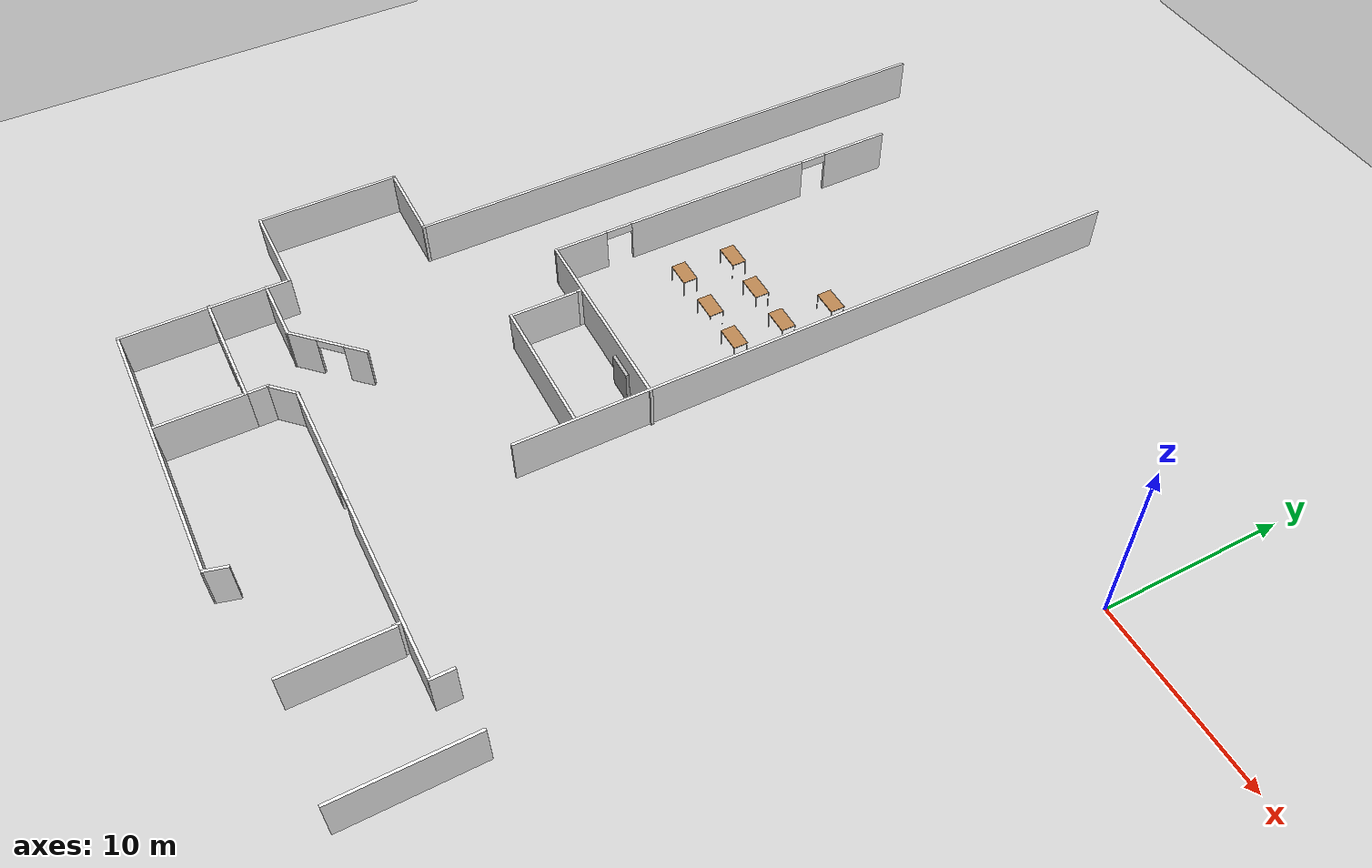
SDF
<sdf version="1.6">
 <world name="default">
  <model name="ground_plane">
   <static>1</static>
   <link name="link">
    <collision name="collision">
     <geometry><plane><normal>0 0 1</normal><size>100 100</size></plane></geometry>
     <surface><friction><ode><mu>100</mu><mu2>50</mu2></ode></friction></surface>
    </collision>
    <visual name="visual">
     <cast_shadows>0</cast_shadows>
     <geometry><plane><normal>0 0 1</normal><size>100 100</size></plane></geometry>
     <material>
      <script>
       <uri>model://office_env/materials/scripts</uri>
       <uri>model://office_env/materials/textures</uri>
       <name>wall</name>
      </script>
     </material>
    </visual>
   </link>
  </model>
  <model name="aule_N">
   <pose>0.1887 -1.4289 0 0 -0 0</pose>
   <link name="Door_6">
    <collision name="Door_6_Collision">
     <geometry><box><size>1.5 0.17 2</size></box></geometry>
     <pose>0 0 1 0 -0 0</pose>
    </collision>
    <visual name="Door_6_Visual">
     <pose>0 0 1 0 -0 0</pose>
     <geometry><box><size>1.5 0.17 2</size></box></geometry>
     <material>
      <script>
       <uri>model://office_env/materials/scripts</uri>
       <uri>model://office_env/materials/textures</uri>
       <name>wall</name>
      </script>
     </material>
    </visual>
    <pose>-21.8785 -12.0586 0 0 -0 0</pose>
   </link>
   <link name="Wall_15">
    <collision name="Wall_15_Collision">
     <geometry><box><size>30.75 0.15 2.5</size></box></geometry>
     <pose>0 0 1.25 0 -0 0</pose>
    </collision>
    <visual name="Wall_15_Visual">
     <pose>0 0 1.25 0 -0 0</pose>
     <geometry><box><size>30.75 0.15 2.5</size></box></geometry>
     <material>
      <script>
       <uri>model://office_env/materials/scripts</uri>
       <uri>model://office_env/materials/textures</uri>
       <name>wall</name>
      </script>
      <ambient>1 1 1 1</ambient>
     </material>
    </visual>
    <pose>-35.3644 -1.91704 0 0 0 -1.5708</pose>
   </link>
   <link name="Wall_16">
    <collision name="Wall_16_Collision">
     <geometry><box><size>4.75 0.15 2.5</size></box></geometry>
     <pose>0 0 1.25 0 -0 0</pose>
    </collision>
    <visual name="Wall_16_Visual">
     <pose>0 0 1.25 0 -0 0</pose>
     <geometry><box><size>4.75 0.15 2.5</size></box></geometry>
     <material>
      <script>
       <uri>model://office_env/materials/scripts</uri>
       <uri>model://office_env/materials/textures</uri>
       <name>wall</name>
      </script>
      <ambient>1 1 1 1</ambient>
     </material>
    </visual>
    <pose>-37.6644 -17.217 0 0 -0 3.14159</pose>
   </link>
   <link name="Wall_17">
    <collision name="Wall_17_Collision">
     <geometry><box><size>7.75 0.15 2.5</size></box></geometry>
     <pose>0 0 1.25 0 -0 0</pose>
    </collision>
    <visual name="Wall_17_Visual">
     <pose>0 0 1.25 0 -0 0</pose>
     <geometry><box><size>7.75 0.15 2.5</size></box></geometry>
     <material>
      <script>
       <uri>model://office_env/materials/scripts</uri>
       <uri>model://office_env/materials/textures</uri>
       <name>wall</name>
      </script>
      <ambient>1 1 1 1</ambient>
     </material>
    </visual>
    <pose>-39.9644 -21.017 0 0 0 -1.5708</pose>
   </link>
   <link name="Wall_18">
    <collision name="Wall_18_Collision">
     <geometry><box><size>5.25 0.15 2.5</size></box></geometry>
     <pose>0 0 1.25 0 -0 0</pose>
    </collision>
    <visual name="Wall_18_Visual">
     <pose>0 0 1.25 0 -0 0</pose>
     <geometry><box><size>5.25 0.15 2.5</size></box></geometry>
     <material>
      <script>
       <uri>model://office_env/materials/scripts</uri>
       <uri>model://office_env/materials/textures</uri>
       <name>wall</name>
      </script>
      <ambient>1 1 1 1</ambient>
     </material>
    </visual>
    <pose>-37.4144 -24.817 0 0 -0 0</pose>
   </link>
   <link name="Wall_188">
    <collision name="Wall_188_Collision">
     <geometry><box><size>3.75 0.15 2.5</size></box></geometry>
     <pose>0 0 1.25 0 -0 0</pose>
    </collision>
    <visual name="Wall_188_Visual">
     <pose>0 0 1.25 0 -0 0</pose>
     <geometry><box><size>3.75 0.15 2.5</size></box></geometry>
     <material>
      <script>
       <uri>model://office_env/materials/scripts</uri>
       <uri>model://office_env/materials/textures</uri>
       <name>wall</name>
      </script>
      <ambient>1 1 1 1</ambient>
     </material>
    </visual>
    <pose>-33.1153 -26.0311 0 0 -0 0</pose>
   </link>
   <link name="Wall_189">
    <pose>-29.7774 -24.4931 0 0 -0 0.785398</pose>
    <visual name="Wall_189_Visual_0">
     <pose>-1.39685 0 1.25 0 -0 0</pose>
     <geometry><box><size>1.7063 0.15 2.5</size></box></geometry>
     <material>
      <script>
       <uri>model://office_env/materials/scripts</uri>
       <uri>model://office_env/materials/textures</uri>
       <name>wall</name>
      </script>
      <ambient>1 1 1 1</ambient>
     </material>
    </visual>
    <collision name="Wall_189_Collision_0">
     <geometry><box><size>1.7063 0.15 2.5</size></box></geometry>
     <pose>-1.39685 0 1.25 0 -0 0</pose>
    </collision>
    <visual name="Wall_189_Visual_1">
     <pose>1.60315 0 1.25 0 -0 0</pose>
     <geometry><box><size>1.2937 0.15 2.5</size></box></geometry>
     <material>
      <script>
       <uri>model://office_env/materials/scripts</uri>
       <uri>model://office_env/materials/textures</uri>
       <name>wall</name>
      </script>
      <ambient>1 1 1 1</ambient>
     </material>
    </visual>
    <collision name="Wall_189_Collision_1">
     <geometry><box><size>1.2937 0.15 2.5</size></box></geometry>
     <pose>1.60315 0 1.25 0 -0 0</pose>
    </collision>
    <visual name="Wall_189_Visual_2">
     <pose>0.2063 0 2.25 0 -0 0</pose>
     <geometry><box><size>1.5 0.15 0.5</size></box></geometry>
     <material>
      <script>
       <uri>model://office_env/materials/scripts</uri>
       <uri>model://office_env/materials/textures</uri>
       <name>wall</name>
      </script>
      <ambient>1 1 1 1</ambient>
     </material>
    </visual>
    <collision name="Wall_189_Collision_2">
     <geometry><box><size>1.5 0.15 0.5</size></box></geometry>
     <pose>0.2063 0 2.25 0 -0 0</pose>
    </collision>
   </link>
   <link name="Wall_19">
    <collision name="Wall_19_Collision">
     <geometry><box><size>9 0.15 2.5</size></box></geometry>
     <pose>0 0 1.25 0 -0 0</pose>
    </collision>
    <visual name="Wall_19_Visual">
     <pose>0 0 1.25 0 -0 0</pose>
     <geometry><box><size>9 0.15 2.5</size></box></geometry>
     <material>
      <script>
       <uri>model://office_env/materials/scripts</uri>
       <uri>model://office_env/materials/textures</uri>
       <name>wall</name>
      </script>
      <ambient>1 1 1 1</ambient>
     </material>
    </visual>
    <pose>-34.8644 -29.242 0 0 0 -1.5708</pose>
   </link>
   <link name="Wall_196">
    <pose>-31.6406 -29.0476 0 0 -0 0</pose>
    <visual name="Wall_196_Visual_0">
     <pose>-1.53431 0 1.25 0 -0 0</pose>
     <geometry><box><size>3.68138 0.15 2.5</size></box></geometry>
     <material>
      <script>
       <uri>model://office_env/materials/scripts</uri>
       <uri>model://office_env/materials/textures</uri>
       <name>wall</name>
      </script>
      <ambient>1 1 1 1</ambient>
     </material>
    </visual>
    <collision name="Wall_196_Collision_0">
     <geometry><box><size>3.68138 0.15 2.5</size></box></geometry>
     <pose>-1.53431 0 1.25 0 -0 0</pose>
    </collision>
    <visual name="Wall_196_Visual_1">
     <pose>2.59069 0 1.25 0 -0 0</pose>
     <geometry><box><size>1.56862 0.15 2.5</size></box></geometry>
     <material>
      <script>
       <uri>model://office_env/materials/scripts</uri>
       <uri>model://office_env/materials/textures</uri>
       <name>wall</name>
      </script>
      <ambient>1 1 1 1</ambient>
     </material>
    </visual>
    <collision name="Wall_196_Collision_1">
     <geometry><box><size>1.56862 0.15 2.5</size></box></geometry>
     <pose>2.59069 0 1.25 0 -0 0</pose>
    </collision>
    <visual name="Wall_196_Visual_2">
     <pose>1.05638 0 2.25 0 -0 0</pose>
     <geometry><box><size>1.5 0.15 0.5</size></box></geometry>
     <material>
      <script>
       <uri>model://office_env/materials/scripts</uri>
       <uri>model://office_env/materials/textures</uri>
       <name>wall</name>
      </script>
      <ambient>1 1 1 1</ambient>
     </material>
    </visual>
    <collision name="Wall_196_Collision_2">
     <geometry><box><size>1.5 0.15 0.5</size></box></geometry>
     <pose>1.05638 0 2.25 0 -0 0</pose>
    </collision>
   </link>
   <link name="Wall_197">
    <collision name="Wall_197_Collision">
     <geometry><box><size>1.25 0.15 2.5</size></box></geometry>
     <pose>0 0 1.25 0 -0 0</pose>
    </collision>
    <visual name="Wall_197_Visual">
     <pose>0 0 1.25 0 -0 0</pose>
     <geometry><box><size>1.25 0.15 2.5</size></box></geometry>
     <material>
      <script>
       <uri>model://office_env/materials/scripts</uri>
       <uri>model://office_env/materials/textures</uri>
       <name>wall</name>
      </script>
      <ambient>1 1 1 1</ambient>
     </material>
    </visual>
    <pose>-28.3406 -28.4976 0 0 -0 1.5708</pose>
   </link>
   <link name="Wall_198">
    <collision name="Wall_198_Collision">
     <geometry><box><size>1.75 0.15 2.5</size></box></geometry>
     <pose>0 0 1.25 0 -0 0</pose>
    </collision>
    <visual name="Wall_198_Visual">
     <pose>0 0 1.25 0 -0 0</pose>
     <geometry><box><size>1.75 0.15 2.5</size></box></geometry>
     <material>
      <script>
       <uri>model://office_env/materials/scripts</uri>
       <uri>model://office_env/materials/textures</uri>
       <name>wall</name>
      </script>
      <ambient>1 1 1 1</ambient>
     </material>
    </visual>
    <pose>-27.7749 -27.3819 0 0 -0 0.785398</pose>
   </link>
   <link name="Wall_199">
    <pose>-18.4092 -26.8162 0 0 -0 0</pose>
    <visual name="Wall_199_Visual_0">
     <pose>-5.96441 0 1.25 0 -0 0</pose>
     <geometry><box><size>5.82117 0.15 2.5</size></box></geometry>
     <material>
      <script>
       <uri>model://office_env/materials/scripts</uri>
       <uri>model://office_env/materials/textures</uri>
       <name>wall</name>
      </script>
      <ambient>1 1 1 1</ambient>
     </material>
    </visual>
    <collision name="Wall_199_Collision_0">
     <geometry><box><size>5.82117 0.15 2.5</size></box></geometry>
     <pose>-5.96441 0 1.25 0 -0 0</pose>
    </collision>
    <visual name="Wall_199_Visual_1">
     <pose>3.66059 0 1.25 0 -0 0</pose>
     <geometry><box><size>10.4288 0.15 2.5</size></box></geometry>
     <material>
      <script>
       <uri>model://office_env/materials/scripts</uri>
       <uri>model://office_env/materials/textures</uri>
       <name>wall</name>
      </script>
      <ambient>1 1 1 1</ambient>
     </material>
    </visual>
    <collision name="Wall_199_Collision_1">
     <geometry><box><size>10.4288 0.15 2.5</size></box></geometry>
     <pose>3.66059 0 1.25 0 -0 0</pose>
    </collision>
    <visual name="Wall_199_Visual_2">
     <pose>-2.30383 0 2.25 0 -0 0</pose>
     <geometry><box><size>1.5 0.15 0.5</size></box></geometry>
     <material>
      <script>
       <uri>model://office_env/materials/scripts</uri>
       <uri>model://office_env/materials/textures</uri>
       <name>wall</name>
      </script>
      <ambient>1 1 1 1</ambient>
     </material>
    </visual>
    <collision name="Wall_199_Collision_2">
     <geometry><box><size>1.5 0.15 0.5</size></box></geometry>
     <pose>-2.30383 0 2.25 0 -0 0</pose>
    </collision>
   </link>
   <link name="Wall_20">
    <collision name="Wall_20_Collision">
     <geometry><box><size>15.75 0.15 2.5</size></box></geometry>
     <pose>0 0 1.25 0 -0 0</pose>
    </collision>
    <visual name="Wall_20_Visual">
     <pose>0 0 1.25 0 -0 0</pose>
     <geometry><box><size>15.75 0.15 2.5</size></box></geometry>
     <material>
      <script>
       <uri>model://office_env/materials/scripts</uri>
       <uri>model://office_env/materials/textures</uri>
       <name>wall</name>
      </script>
      <ambient>1 1 1 1</ambient>
     </material>
    </visual>
    <pose>-27.0644 -33.667 0 0 -0 0</pose>
   </link>
   <link name="Wall_200">
    <collision name="Wall_200_Collision">
     <geometry><box><size>1.25 0.15 2.5</size></box></geometry>
     <pose>0 0 1.25 0 -0 0</pose>
    </collision>
    <visual name="Wall_200_Visual">
     <pose>0 0 1.25 0 -0 0</pose>
     <geometry><box><size>1.25 0.15 2.5</size></box></geometry>
     <material>
      <script>
       <uri>model://office_env/materials/scripts</uri>
       <uri>model://office_env/materials/textures</uri>
       <name>wall</name>
      </script>
      <ambient>1 1 1 1</ambient>
     </material>
    </visual>
    <pose>-9.6092 -26.2662 0 0 -0 1.5708</pose>
   </link>
   <link name="Wall_21">
    <collision name="Wall_21_Collision">
     <geometry><box><size>1.25 0.15 2.5</size></box></geometry>
     <pose>0 0 1.25 0 -0 0</pose>
    </collision>
    <visual name="Wall_21_Visual">
     <pose>0 0 1.25 0 -0 0</pose>
     <geometry><box><size>1.25 0.15 2.5</size></box></geometry>
     <material>
      <script>
       <uri>model://office_env/materials/scripts</uri>
       <uri>model://office_env/materials/textures</uri>
       <name>wall</name>
      </script>
      <ambient>1 1 1 1</ambient>
     </material>
    </visual>
    <pose>-19.122 -33.1358 0 0 -0 1.309</pose>
   </link>
   <link name="Wall_223">
    <collision name="Wall_223_Collision">
     <geometry><box><size>7 0.15 2.5</size></box></geometry>
     <pose>0 0 1.25 0 -0 0</pose>
    </collision>
    <visual name="Wall_223_Visual">
     <pose>0 0 1.25 0 -0 0</pose>
     <geometry><box><size>7 0.15 2.5</size></box></geometry>
     <material>
      <script>
       <uri>model://office_env/materials/scripts</uri>
       <uri>model://office_env/materials/textures</uri>
       <name>wall</name>
      </script>
      <ambient>1 1 1 1</ambient>
     </material>
    </visual>
    <pose>-6.4322 -29.1008 0 0 0 -1.5708</pose>
   </link>
   <link name="Wall_225">
    <collision name="Wall_225_Collision">
     <geometry><box><size>5.5 0.15 2.5</size></box></geometry>
     <pose>0 0 1.25 0 -0 0</pose>
    </collision>
    <visual name="Wall_225_Visual">
     <pose>0 0 1.25 0 -0 0</pose>
     <geometry><box><size>5.5 0.15 2.5</size></box></geometry>
     <material>
      <script>
       <uri>model://office_env/materials/scripts</uri>
       <uri>model://office_env/materials/textures</uri>
       <name>wall</name>
      </script>
      <ambient>1 1 1 1</ambient>
     </material>
    </visual>
    <pose>-12.6624 -29.8072 0 0 0 -1.5708</pose>
   </link>
   <link name="Wall_227">
    <collision name="Wall_227_Collision">
     <geometry><box><size>4.75 0.15 2.5</size></box></geometry>
     <pose>0 0 1.25 0 -0 0</pose>
    </collision>
    <visual name="Wall_227_Visual">
     <pose>0 0 1.25 0 -0 0</pose>
     <geometry><box><size>4.75 0.15 2.5</size></box></geometry>
     <material>
      <script>
       <uri>model://office_env/materials/scripts</uri>
       <uri>model://office_env/materials/textures</uri>
       <name>wall</name>
      </script>
      <ambient>1 1 1 1</ambient>
     </material>
    </visual>
    <pose>-28.3406 -31.3476 0 0 0 -1.5708</pose>
   </link>
   <link name="Wall_45">
    <collision name="Wall_45_Collision">
     <geometry><box><size>34.5 0.15 2.5</size></box></geometry>
     <pose>0 0 1.25 0 -0 0</pose>
    </collision>
    <visual name="Wall_45_Visual">
     <pose>0 0 1.25 0 -0 0</pose>
     <geometry><box><size>34.5 0.15 2.5</size></box></geometry>
     <material>
      <script>
       <uri>model://office_env/materials/scripts</uri>
       <uri>model://office_env/materials/textures</uri>
       <name>wall</name>
      </script>
      <ambient>1 1 1 1</ambient>
     </material>
    </visual>
    <pose>-19.4071 -1.71111 0 0 0 -1.5708</pose>
   </link>
   <link name="Wall_61">
    <pose>-30.4055 -1.48932 0 0 0 -1.5708</pose>
    <visual name="Wall_61_Visual_0">
     <pose>-8.32858 0 1.25 0 -0 0</pose>
     <geometry><box><size>3.84285 0.15 2.5</size></box></geometry>
     <material>
      <script>
       <uri>model://office_env/materials/scripts</uri>
       <uri>model://office_env/materials/textures</uri>
       <name>wall</name>
      </script>
      <ambient>1 1 1 1</ambient>
     </material>
    </visual>
    <collision name="Wall_61_Collision_0">
     <geometry><box><size>3.84285 0.15 2.5</size></box></geometry>
     <pose>-8.32858 0 1.25 0 -0 0</pose>
    </collision>
    <visual name="Wall_61_Visual_1">
     <pose>0.415385 0 1.25 0 -0 0</pose>
     <geometry><box><size>10.6451 0.15 2.5</size></box></geometry>
     <material>
      <script>
       <uri>model://office_env/materials/scripts</uri>
       <uri>model://office_env/materials/textures</uri>
       <name>wall</name>
      </script>
      <ambient>1 1 1 1</ambient>
     </material>
    </visual>
    <collision name="Wall_61_Collision_1">
     <geometry><box><size>10.6451 0.15 2.5</size></box></geometry>
     <pose>0.415385 0 1.25 0 -0 0</pose>
    </collision>
    <visual name="Wall_61_Visual_2">
     <pose>8.74396 0 1.25 0 -0 0</pose>
     <geometry><box><size>3.01208 0.15 2.5</size></box></geometry>
     <material>
      <script>
       <uri>model://office_env/materials/scripts</uri>
       <uri>model://office_env/materials/textures</uri>
       <name>wall</name>
      </script>
      <ambient>1 1 1 1</ambient>
     </material>
    </visual>
    <collision name="Wall_61_Collision_2">
     <geometry><box><size>3.01208 0.15 2.5</size></box></geometry>
     <pose>8.74396 0 1.25 0 -0 0</pose>
    </collision>
    <visual name="Wall_61_Visual_3">
     <pose>-5.65715 0 2.25 0 -0 0</pose>
     <geometry><box><size>1.5 0.15 0.5</size></box></geometry>
     <material>
      <script>
       <uri>model://office_env/materials/scripts</uri>
       <uri>model://office_env/materials/textures</uri>
       <name>wall</name>
      </script>
      <ambient>1 1 1 1</ambient>
     </material>
    </visual>
    <collision name="Wall_61_Collision_3">
     <geometry><box><size>1.5 0.15 0.5</size></box></geometry>
     <pose>-5.65715 0 2.25 0 -0 0</pose>
    </collision>
    <visual name="Wall_61_Visual_4">
     <pose>6.48792 0 2.25 0 -0 0</pose>
     <geometry><box><size>1.5 0.15 0.5</size></box></geometry>
     <material>
      <script>
       <uri>model://office_env/materials/scripts</uri>
       <uri>model://office_env/materials/textures</uri>
       <name>wall</name>
      </script>
      <ambient>1 1 1 1</ambient>
     </material>
    </visual>
    <collision name="Wall_61_Collision_4">
     <geometry><box><size>1.5 0.15 0.5</size></box></geometry>
     <pose>6.48792 0 2.25 0 -0 0</pose>
    </collision>
   </link>
   <link name="Wall_62">
    <collision name="Wall_62_Collision">
     <geometry><box><size>11.25 0.15 2.5</size></box></geometry>
     <pose>0 0 1.25 0 -0 0</pose>
    </collision>
    <visual name="Wall_62_Visual">
     <pose>0 0 1.25 0 -0 0</pose>
     <geometry><box><size>11.25 0.15 2.5</size></box></geometry>
     <material>
      <script>
       <uri>model://office_env/materials/scripts</uri>
       <uri>model://office_env/materials/textures</uri>
       <name>wall</name>
      </script>
      <ambient>1 1 1 1</ambient>
     </material>
    </visual>
    <pose>-24.8555 -11.6643 0 0 -0 0</pose>
   </link>
   <link name="Wall_66">
    <collision name="Wall_66_Collision">
     <geometry><box><size>3.75 0.15 2.5</size></box></geometry>
     <pose>0 0 1.25 0 -0 0</pose>
    </collision>
    <visual name="Wall_66_Visual">
     <pose>0 0 1.25 0 -0 0</pose>
     <geometry><box><size>3.75 0.15 2.5</size></box></geometry>
     <material>
      <script>
       <uri>model://office_env/materials/scripts</uri>
       <uri>model://office_env/materials/textures</uri>
       <name>wall</name>
      </script>
      <ambient>1 1 1 1</ambient>
     </material>
    </visual>
    <pose>-27.1083 -13.8586 0 0 0 -1.5708</pose>
   </link>
   <link name="Wall_67">
    <collision name="Wall_67_Collision">
     <geometry><box><size>7.75 0.15 2.5</size></box></geometry>
     <pose>0 0 1.25 0 -0 0</pose>
    </collision>
    <visual name="Wall_67_Visual">
     <pose>0 0 1.25 0 -0 0</pose>
     <geometry><box><size>7.75 0.15 2.5</size></box></geometry>
     <material>
      <script>
       <uri>model://office_env/materials/scripts</uri>
       <uri>model://office_env/materials/textures</uri>
       <name>wall</name>
      </script>
      <ambient>1 1 1 1</ambient>
     </material>
    </visual>
    <pose>-23.3083 -15.6586 0 0 -0 0</pose>
   </link>
   <static>1</static>
  </model>
  <model name="wall_piece_05_0">
   <pose>-26.9364 -13.4042 -0.000635 0 0 -1.57033</pose>
   <link name="Wall_248">
    <collision name="Wall_248_Collision">
     <geometry><box><size>0.5 0.15 2.5</size></box></geometry>
     <pose>0 0 1.25 0 -0 0</pose>
    </collision>
    <visual name="Wall_248_Visual">
     <pose>0 0 1.25 0 -0 0</pose>
     <geometry><box><size>0.5 0.15 2.5</size></box></geometry>
     <material>
      <script>
       <uri>model://office_env/materials/scripts</uri>
       <uri>model://office_env/materials/textures</uri>
       <name>wall</name>
      </script>
      <ambient>1 1 1 1</ambient>
     </material>
    </visual>
   </link>
   <static>1</static>
  </model>
  <model name="wall_piece_05">
   <pose>-12.5421 -28.4568 0 0 0 -1.53893</pose>
   <link name="Wall_248">
    <collision name="Wall_248_Collision">
     <geometry><box><size>0.5 0.15 2.5</size></box></geometry>
     <pose>0 0 1.25 0 -0 0</pose>
    </collision>
    <visual name="Wall_248_Visual">
     <pose>0 0 1.25 0 -0 0</pose>
     <geometry><box><size>0.5 0.15 2.5</size></box></geometry>
     <material>
      <script>
       <uri>model://office_env/materials/scripts</uri>
       <uri>model://office_env/materials/textures</uri>
       <name>wall</name>
      </script>
      <ambient>1 1 1 1</ambient>
     </material>
    </visual>
   </link>
   <static>1</static>
  </model>
  <model name="table_22">
   <static>0</static>
   <link name="link">
    <collision name="surface">
     <pose>0 0 1 0 -0 0</pose>
     <geometry><box><size>1.5 0.8 0.03</size></box></geometry>
     <surface><friction><ode><mu>0.6</mu><mu2>0.6</mu2></ode></friction></surface>
    </collision>
    <visual name="visual1">
     <pose>0 0 1 0 -0 0</pose>
     <geometry><box><size>1.4 0.8 0.04</size></box></geometry>
     <material>
      <script><uri>file://media/materials/scripts/gazebo.material</uri><name>Gazebo/Wood</name></script>
     </material>
    </visual>
    <collision name="front_left_leg">
     <pose>0.68 0.38 0.5 0 -0 0</pose>
     <geometry><cylinder><radius>0.02</radius><length>1</length></cylinder></geometry>
    </collision>
    <visual name="front_left_leg">
     <pose>0.68 0.38 0.5 0 -0 0</pose>
     <geometry><cylinder><radius>0.02</radius><length>1</length></cylinder></geometry>
     <material>
      <script>
       <uri>model://office_env/materials/scripts</uri>
       <uri>model://office_env/materials/textures</uri>
       <name>wall</name>
      </script>
     </material>
    </visual>
    <collision name="front_right_leg">
     <pose>0.68 -0.38 0.5 0 -0 0</pose>
     <geometry><cylinder><radius>0.02</radius><length>1</length></cylinder></geometry>
    </collision>
    <visual name="front_right_leg">
     <pose>0.68 -0.38 0.5 0 -0 0</pose>
     <geometry><cylinder><radius>0.02</radius><length>1</length></cylinder></geometry>
     <material>
      <script>
       <uri>model://office_env/materials/scripts</uri>
       <uri>model://office_env/materials/textures</uri>
       <name>wall</name>
      </script>
     </material>
    </visual>
    <collision name="back_right_leg">
     <pose>-0.68 -0.38 0.5 0 -0 0</pose>
     <geometry><cylinder><radius>0.02</radius><length>1</length></cylinder></geometry>
    </collision>
    <visual name="back_right_leg">
     <pose>-0.68 -0.38 0.5 0 -0 0</pose>
     <geometry><cylinder><radius>0.02</radius><length>1</length></cylinder></geometry>
     <material>
      <script>
       <uri>model://office_env/materials/scripts</uri>
       <uri>model://office_env/materials/textures</uri>
       <name>wall</name>
      </script>
     </material>
    </visual>
    <collision name="back_left_leg">
     <pose>-0.68 0.38 0.5 0 -0 0</pose>
     <geometry><cylinder><radius>0.02</radius><length>1</length></cylinder></geometry>
    </collision>
    <visual name="back_left_leg">
     <pose>-0.68 0.38 0.5 0 -0 0</pose>
     <geometry><cylinder><radius>0.02</radius><length>1</length></cylinder></geometry>
     <material>
      <script>
       <uri>model://office_env/materials/scripts</uri>
       <uri>model://office_env/materials/textures</uri>
       <name>wall</name>
      </script>
     </material>
    </visual>
    <inertial>
     <inertia><ixx>1</ixx><ixy>0</ixy><ixz>0</ixz><iyy>1</iyy><iyz>0</iyz><izz>1</izz></inertia>
     <mass>1</mass>
    </inertial>
   </link>
   <pose>-21.3742 -1.38008 0.009992 0 -0 0</pose>
  </model>
  <model name="table_24">
   <static>0</static>
   <link name="link">
    <collision name="surface">
     <pose>0 0 1 0 -0 0</pose>
     <geometry><box><size>1.5 0.8 0.03</size></box></geometry>
     <surface><friction><ode><mu>0.6</mu><mu2>0.6</mu2></ode></friction></surface>
    </collision>
    <visual name="visual1">
     <pose>0 0 1 0 -0 0</pose>
     <geometry><box><size>1.4 0.8 0.04</size></box></geometry>
     <material>
      <script><uri>file://media/materials/scripts/gazebo.material</uri><name>Gazebo/Wood</name></script>
     </material>
    </visual>
    <collision name="front_left_leg">
     <pose>0.68 0.38 0.5 0 -0 0</pose>
     <geometry><cylinder><radius>0.02</radius><length>1</length></cylinder></geometry>
    </collision>
    <visual name="front_left_leg">
     <pose>0.68 0.38 0.5 0 -0 0</pose>
     <geometry><cylinder><radius>0.02</radius><length>1</length></cylinder></geometry>
     <material>
      <script>
       <uri>model://office_env/materials/scripts</uri>
       <uri>model://office_env/materials/textures</uri>
       <name>wall</name>
      </script>
     </material>
    </visual>
    <collision name="front_right_leg">
     <pose>0.68 -0.38 0.5 0 -0 0</pose>
     <geometry><cylinder><radius>0.02</radius><length>1</length></cylinder></geometry>
    </collision>
    <visual name="front_right_leg">
     <pose>0.68 -0.38 0.5 0 -0 0</pose>
     <geometry><cylinder><radius>0.02</radius><length>1</length></cylinder></geometry>
     <material>
      <script>
       <uri>model://office_env/materials/scripts</uri>
       <uri>model://office_env/materials/textures</uri>
       <name>wall</name>
      </script>
     </material>
    </visual>
    <collision name="back_right_leg">
     <pose>-0.68 -0.38 0.5 0 -0 0</pose>
     <geometry><cylinder><radius>0.02</radius><length>1</length></cylinder></geometry>
    </collision>
    <visual name="back_right_leg">
     <pose>-0.68 -0.38 0.5 0 -0 0</pose>
     <geometry><cylinder><radius>0.02</radius><length>1</length></cylinder></geometry>
     <material>
      <script>
       <uri>model://office_env/materials/scripts</uri>
       <uri>model://office_env/materials/textures</uri>
       <name>wall</name>
      </script>
     </material>
    </visual>
    <collision name="back_left_leg">
     <pose>-0.68 0.38 0.5 0 -0 0</pose>
     <geometry><cylinder><radius>0.02</radius><length>1</length></cylinder></geometry>
    </collision>
    <visual name="back_left_leg">
     <pose>-0.68 0.38 0.5 0 -0 0</pose>
     <geometry><cylinder><radius>0.02</radius><length>1</length></cylinder></geometry>
     <material>
      <script>
       <uri>model://office_env/materials/scripts</uri>
       <uri>model://office_env/materials/textures</uri>
       <name>wall</name>
      </script>
     </material>
    </visual>
    <inertial>
     <inertia><ixx>1</ixx><ixy>0</ixy><ixz>0</ixz><iyy>1</iyy><iyz>0</iyz><izz>1</izz></inertia>
     <mass>1</mass>
    </inertial>
   </link>
   <pose>-21.4306 -4.33182 0.009992 0 -0 0</pose>
  </model>
  <model name="table_25">
   <static>0</static>
   <link name="link">
    <collision name="surface">
     <pose>0 0 1 0 -0 0</pose>
     <geometry><box><size>1.5 0.8 0.03</size></box></geometry>
     <surface><friction><ode><mu>0.6</mu><mu2>0.6</mu2></ode></friction></surface>
    </collision>
    <visual name="visual1">
     <pose>0 0 1 0 -0 0</pose>
     <geometry><box><size>1.4 0.8 0.04</size></box></geometry>
     <material>
      <script><uri>file://media/materials/scripts/gazebo.material</uri><name>Gazebo/Wood</name></script>
     </material>
    </visual>
    <collision name="front_left_leg">
     <pose>0.68 0.38 0.5 0 -0 0</pose>
     <geometry><cylinder><radius>0.02</radius><length>1</length></cylinder></geometry>
    </collision>
    <visual name="front_left_leg">
     <pose>0.68 0.38 0.5 0 -0 0</pose>
     <geometry><cylinder><radius>0.02</radius><length>1</length></cylinder></geometry>
     <material>
      <script>
       <uri>model://office_env/materials/scripts</uri>
       <uri>model://office_env/materials/textures</uri>
       <name>wall</name>
      </script>
     </material>
    </visual>
    <collision name="front_right_leg">
     <pose>0.68 -0.38 0.5 0 -0 0</pose>
     <geometry><cylinder><radius>0.02</radius><length>1</length></cylinder></geometry>
    </collision>
    <visual name="front_right_leg">
     <pose>0.68 -0.38 0.5 0 -0 0</pose>
     <geometry><cylinder><radius>0.02</radius><length>1</length></cylinder></geometry>
     <material>
      <script>
       <uri>model://office_env/materials/scripts</uri>
       <uri>model://office_env/materials/textures</uri>
       <name>wall</name>
      </script>
     </material>
    </visual>
    <collision name="back_right_leg">
     <pose>-0.68 -0.38 0.5 0 -0 0</pose>
     <geometry><cylinder><radius>0.02</radius><length>1</length></cylinder></geometry>
    </collision>
    <visual name="back_right_leg">
     <pose>-0.68 -0.38 0.5 0 -0 0</pose>
     <geometry><cylinder><radius>0.02</radius><length>1</length></cylinder></geometry>
     <material>
      <script>
       <uri>model://office_env/materials/scripts</uri>
       <uri>model://office_env/materials/textures</uri>
       <name>wall</name>
      </script>
     </material>
    </visual>
    <collision name="back_left_leg">
     <pose>-0.68 0.38 0.5 0 -0 0</pose>
     <geometry><cylinder><radius>0.02</radius><length>1</length></cylinder></geometry>
    </collision>
    <visual name="back_left_leg">
     <pose>-0.68 0.38 0.5 0 -0 0</pose>
     <geometry><cylinder><radius>0.02</radius><length>1</length></cylinder></geometry>
     <material>
      <script>
       <uri>model://office_env/materials/scripts</uri>
       <uri>model://office_env/materials/textures</uri>
       <name>wall</name>
      </script>
     </material>
    </visual>
    <inertial>
     <inertia><ixx>1</ixx><ixy>0</ixy><ixz>0</ixz><iyy>1</iyy><iyz>0</iyz><izz>1</izz></inertia>
     <mass>1</mass>
    </inertial>
   </link>
   <pose>-24.1296 -4.3556 0.009992 0 -0 0</pose>
  </model>
  <model name="table_26">
   <static>0</static>
   <link name="link">
    <collision name="surface">
     <pose>0 0 1 0 -0 0</pose>
     <geometry><box><size>1.5 0.8 0.03</size></box></geometry>
     <surface><friction><ode><mu>0.6</mu><mu2>0.6</mu2></ode></friction></surface>
    </collision>
    <visual name="visual1">
     <pose>0 0 1 0 -0 0</pose>
     <geometry><box><size>1.4 0.8 0.04</size></box></geometry>
     <material>
      <script><uri>file://media/materials/scripts/gazebo.material</uri><name>Gazebo/Wood</name></script>
     </material>
    </visual>
    <collision name="front_left_leg">
     <pose>0.68 0.38 0.5 0 -0 0</pose>
     <geometry><cylinder><radius>0.02</radius><length>1</length></cylinder></geometry>
    </collision>
    <visual name="front_left_leg">
     <pose>0.68 0.38 0.5 0 -0 0</pose>
     <geometry><cylinder><radius>0.02</radius><length>1</length></cylinder></geometry>
     <material>
      <script>
       <uri>model://office_env/materials/scripts</uri>
       <uri>model://office_env/materials/textures</uri>
       <name>wall</name>
      </script>
     </material>
    </visual>
    <collision name="front_right_leg">
     <pose>0.68 -0.38 0.5 0 -0 0</pose>
     <geometry><cylinder><radius>0.02</radius><length>1</length></cylinder></geometry>
    </collision>
    <visual name="front_right_leg">
     <pose>0.68 -0.38 0.5 0 -0 0</pose>
     <geometry><cylinder><radius>0.02</radius><length>1</length></cylinder></geometry>
     <material>
      <script>
       <uri>model://office_env/materials/scripts</uri>
       <uri>model://office_env/materials/textures</uri>
       <name>wall</name>
      </script>
     </material>
    </visual>
    <collision name="back_right_leg">
     <pose>-0.68 -0.38 0.5 0 -0 0</pose>
     <geometry><cylinder><radius>0.02</radius><length>1</length></cylinder></geometry>
    </collision>
    <visual name="back_right_leg">
     <pose>-0.68 -0.38 0.5 0 -0 0</pose>
     <geometry><cylinder><radius>0.02</radius><length>1</length></cylinder></geometry>
     <material>
      <script>
       <uri>model://office_env/materials/scripts</uri>
       <uri>model://office_env/materials/textures</uri>
       <name>wall</name>
      </script>
     </material>
    </visual>
    <collision name="back_left_leg">
     <pose>-0.68 0.38 0.5 0 -0 0</pose>
     <geometry><cylinder><radius>0.02</radius><length>1</length></cylinder></geometry>
    </collision>
    <visual name="back_left_leg">
     <pose>-0.68 0.38 0.5 0 -0 0</pose>
     <geometry><cylinder><radius>0.02</radius><length>1</length></cylinder></geometry>
     <material>
      <script>
       <uri>model://office_env/materials/scripts</uri>
       <uri>model://office_env/materials/textures</uri>
       <name>wall</name>
      </script>
     </material>
    </visual>
    <inertial>
     <inertia><ixx>1</ixx><ixy>0</ixy><ixz>0</ixz><iyy>1</iyy><iyz>0</iyz><izz>1</izz></inertia>
     <mass>1</mass>
    </inertial>
   </link>
   <pose>-21.5115 -7.11009 0.009992 0 -0 0</pose>
  </model>
  <model name="table_27">
   <static>0</static>
   <link name="link">
    <collision name="surface">
     <pose>0 0 1 0 -0 0</pose>
     <geometry><box><size>1.5 0.8 0.03</size></box></geometry>
     <surface><friction><ode><mu>0.6</mu><mu2>0.6</mu2></ode></friction></surface>
    </collision>
    <visual name="visual1">
     <pose>0 0 1 0 -0 0</pose>
     <geometry><box><size>1.4 0.8 0.04</size></box></geometry>
     <material>
      <script><uri>file://media/materials/scripts/gazebo.material</uri><name>Gazebo/Wood</name></script>
     </material>
    </visual>
    <collision name="front_left_leg">
     <pose>0.68 0.38 0.5 0 -0 0</pose>
     <geometry><cylinder><radius>0.02</radius><length>1</length></cylinder></geometry>
    </collision>
    <visual name="front_left_leg">
     <pose>0.68 0.38 0.5 0 -0 0</pose>
     <geometry><cylinder><radius>0.02</radius><length>1</length></cylinder></geometry>
     <material>
      <script>
       <uri>model://office_env/materials/scripts</uri>
       <uri>model://office_env/materials/textures</uri>
       <name>wall</name>
      </script>
     </material>
    </visual>
    <collision name="front_right_leg">
     <pose>0.68 -0.38 0.5 0 -0 0</pose>
     <geometry><cylinder><radius>0.02</radius><length>1</length></cylinder></geometry>
    </collision>
    <visual name="front_right_leg">
     <pose>0.68 -0.38 0.5 0 -0 0</pose>
     <geometry><cylinder><radius>0.02</radius><length>1</length></cylinder></geometry>
     <material>
      <script>
       <uri>model://office_env/materials/scripts</uri>
       <uri>model://office_env/materials/textures</uri>
       <name>wall</name>
      </script>
     </material>
    </visual>
    <collision name="back_right_leg">
     <pose>-0.68 -0.38 0.5 0 -0 0</pose>
     <geometry><cylinder><radius>0.02</radius><length>1</length></cylinder></geometry>
    </collision>
    <visual name="back_right_leg">
     <pose>-0.68 -0.38 0.5 0 -0 0</pose>
     <geometry><cylinder><radius>0.02</radius><length>1</length></cylinder></geometry>
     <material>
      <script>
       <uri>model://office_env/materials/scripts</uri>
       <uri>model://office_env/materials/textures</uri>
       <name>wall</name>
      </script>
     </material>
    </visual>
    <collision name="back_left_leg">
     <pose>-0.68 0.38 0.5 0 -0 0</pose>
     <geometry><cylinder><radius>0.02</radius><length>1</length></cylinder></geometry>
    </collision>
    <visual name="back_left_leg">
     <pose>-0.68 0.38 0.5 0 -0 0</pose>
     <geometry><cylinder><radius>0.02</radius><length>1</length></cylinder></geometry>
     <material>
      <script>
       <uri>model://office_env/materials/scripts</uri>
       <uri>model://office_env/materials/textures</uri>
       <name>wall</name>
      </script>
     </material>
    </visual>
    <inertial>
     <inertia><ixx>1</ixx><ixy>0</ixy><ixz>0</ixz><iyy>1</iyy><iyz>0</iyz><izz>1</izz></inertia>
     <mass>1</mass>
    </inertial>
   </link>
   <pose>-24.0634 -7.13867 0.009992 0 -0 0</pose>
  </model>
  <model name="table_31">
   <static>0</static>
   <link name="link">
    <collision name="surface">
     <pose>0 0 1 0 -0 0</pose>
     <geometry><box><size>1.5 0.8 0.03</size></box></geometry>
     <surface><friction><ode><mu>0.6</mu><mu2>0.6</mu2></ode></friction></surface>
    </collision>
    <visual name="visual1">
     <pose>0 0 1 0 -0 0</pose>
     <geometry><box><size>1.4 0.8 0.04</size></box></geometry>
     <material>
      <script><uri>file://media/materials/scripts/gazebo.material</uri><name>Gazebo/Wood</name></script>
     </material>
    </visual>
    <collision name="front_left_leg">
     <pose>0.68 0.38 0.5 0 -0 0</pose>
     <geometry><cylinder><radius>0.02</radius><length>1</length></cylinder></geometry>
    </collision>
    <visual name="front_left_leg">
     <pose>0.68 0.38 0.5 0 -0 0</pose>
     <geometry><cylinder><radius>0.02</radius><length>1</length></cylinder></geometry>
     <material>
      <script>
       <uri>model://office_env/materials/scripts</uri>
       <uri>model://office_env/materials/textures</uri>
       <name>wall</name>
      </script>
     </material>
    </visual>
    <collision name="front_right_leg">
     <pose>0.68 -0.38 0.5 0 -0 0</pose>
     <geometry><cylinder><radius>0.02</radius><length>1</length></cylinder></geometry>
    </collision>
    <visual name="front_right_leg">
     <pose>0.68 -0.38 0.5 0 -0 0</pose>
     <geometry><cylinder><radius>0.02</radius><length>1</length></cylinder></geometry>
     <material>
      <script>
       <uri>model://office_env/materials/scripts</uri>
       <uri>model://office_env/materials/textures</uri>
       <name>wall</name>
      </script>
     </material>
    </visual>
    <collision name="back_right_leg">
     <pose>-0.68 -0.38 0.5 0 -0 0</pose>
     <geometry><cylinder><radius>0.02</radius><length>1</length></cylinder></geometry>
    </collision>
    <visual name="back_right_leg">
     <pose>-0.68 -0.38 0.5 0 -0 0</pose>
     <geometry><cylinder><radius>0.02</radius><length>1</length></cylinder></geometry>
     <material>
      <script>
       <uri>model://office_env/materials/scripts</uri>
       <uri>model://office_env/materials/textures</uri>
       <name>wall</name>
      </script>
     </material>
    </visual>
    <collision name="back_left_leg">
     <pose>-0.68 0.38 0.5 0 -0 0</pose>
     <geometry><cylinder><radius>0.02</radius><length>1</length></cylinder></geometry>
    </collision>
    <visual name="back_left_leg">
     <pose>-0.68 0.38 0.5 0 -0 0</pose>
     <geometry><cylinder><radius>0.02</radius><length>1</length></cylinder></geometry>
     <material>
      <script>
       <uri>model://office_env/materials/scripts</uri>
       <uri>model://office_env/materials/textures</uri>
       <name>wall</name>
      </script>
     </material>
    </visual>
    <inertial>
     <inertia><ixx>1</ixx><ixy>0</ixy><ixz>0</ixz><iyy>1</iyy><iyz>0</iyz><izz>1</izz></inertia>
     <mass>1</mass>
    </inertial>
   </link>
   <pose>-26.7938 -4.26953 0.009992 0 -0 0</pose>
  </model>
  <model name="table_32">
   <static>0</static>
   <link name="link">
    <collision name="surface">
     <pose>0 0 1 0 -0 0</pose>
     <geometry><box><size>1.5 0.8 0.03</size></box></geometry>
     <surface><friction><ode><mu>0.6</mu><mu2>0.6</mu2></ode></friction></surface>
    </collision>
    <visual name="visual1">
     <pose>0 0 1 0 -0 0</pose>
     <geometry><box><size>1.4 0.8 0.04</size></box></geometry>
     <material>
      <script><uri>file://media/materials/scripts/gazebo.material</uri><name>Gazebo/Wood</name></script>
     </material>
    </visual>
    <collision name="front_left_leg">
     <pose>0.68 0.38 0.5 0 -0 0</pose>
     <geometry><cylinder><radius>0.02</radius><length>1</length></cylinder></geometry>
    </collision>
    <visual name="front_left_leg">
     <pose>0.68 0.38 0.5 0 -0 0</pose>
     <geometry><cylinder><radius>0.02</radius><length>1</length></cylinder></geometry>
     <material>
      <script>
       <uri>model://office_env/materials/scripts</uri>
       <uri>model://office_env/materials/textures</uri>
       <name>wall</name>
      </script>
     </material>
    </visual>
    <collision name="front_right_leg">
     <pose>0.68 -0.38 0.5 0 -0 0</pose>
     <geometry><cylinder><radius>0.02</radius><length>1</length></cylinder></geometry>
    </collision>
    <visual name="front_right_leg">
     <pose>0.68 -0.38 0.5 0 -0 0</pose>
     <geometry><cylinder><radius>0.02</radius><length>1</length></cylinder></geometry>
     <material>
      <script>
       <uri>model://office_env/materials/scripts</uri>
       <uri>model://office_env/materials/textures</uri>
       <name>wall</name>
      </script>
     </material>
    </visual>
    <collision name="back_right_leg">
     <pose>-0.68 -0.38 0.5 0 -0 0</pose>
     <geometry><cylinder><radius>0.02</radius><length>1</length></cylinder></geometry>
    </collision>
    <visual name="back_right_leg">
     <pose>-0.68 -0.38 0.5 0 -0 0</pose>
     <geometry><cylinder><radius>0.02</radius><length>1</length></cylinder></geometry>
     <material>
      <script>
       <uri>model://office_env/materials/scripts</uri>
       <uri>model://office_env/materials/textures</uri>
       <name>wall</name>
      </script>
     </material>
    </visual>
    <collision name="back_left_leg">
     <pose>-0.68 0.38 0.5 0 -0 0</pose>
     <geometry><cylinder><radius>0.02</radius><length>1</length></cylinder></geometry>
    </collision>
    <visual name="back_left_leg">
     <pose>-0.68 0.38 0.5 0 -0 0</pose>
     <geometry><cylinder><radius>0.02</radius><length>1</length></cylinder></geometry>
     <material>
      <script>
       <uri>model://office_env/materials/scripts</uri>
       <uri>model://office_env/materials/textures</uri>
       <name>wall</name>
      </script>
     </material>
    </visual>
    <inertial>
     <inertia><ixx>1</ixx><ixy>0</ixy><ixz>0</ixz><iyy>1</iyy><iyz>0</iyz><izz>1</izz></inertia>
     <mass>1</mass>
    </inertial>
   </link>
   <pose>-26.8668 -7.19894 0.009992 0 -0 0</pose>
  </model>
 </world>
</sdf>
